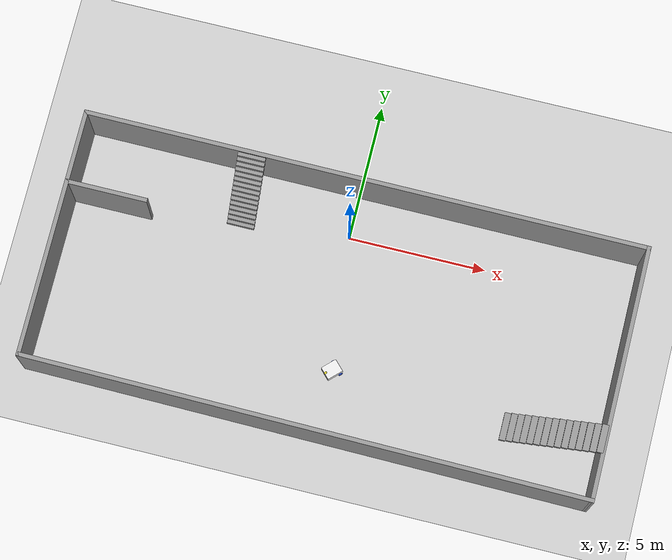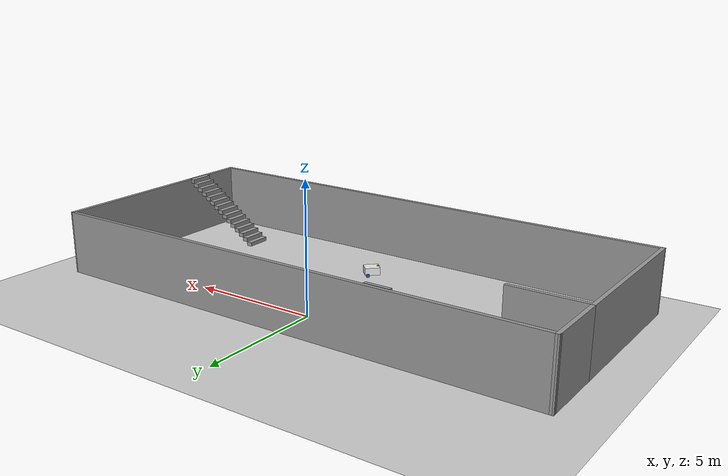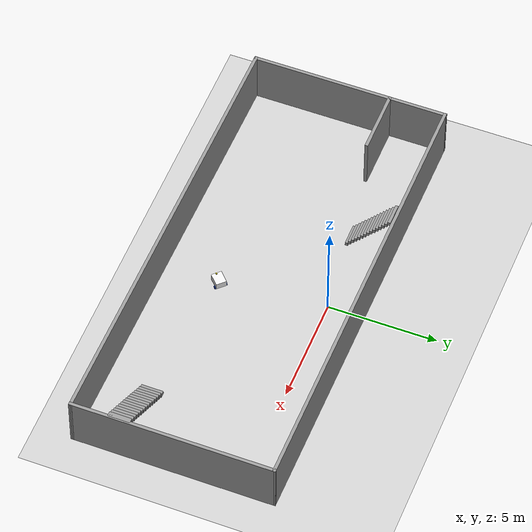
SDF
<sdf version="1.6">
 <world name="default">
  <light name="sun" type="directional">
   <pose>0 0 10 0 -0 0</pose>
   <diffuse>0.8 0.8 0.8 1</diffuse>
   <specular>0.2 0.2 0.2 1</specular>
   <attenuation>
    <range>1000</range>
    <constant>0.9</constant>
    <linear>0.01</linear>
    <quadratic>0.001</quadratic>
   </attenuation>
   <direction>-0.5 0.1 -0.9</direction>
  </light>
  <model name="ground_plane">
   <static>1</static>
   <link name="link">
    <collision name="collision">
     <geometry><plane><normal>0 0 1</normal><size>100 100</size></plane></geometry>
     <surface>
      <contact><collide_bitmask>65535</collide_bitmask></contact>
      <friction><ode><mu>100</mu><mu2>50</mu2></ode></friction>
     </surface>
    </collision>
    <visual name="visual">
     <cast_shadows>0</cast_shadows>
     <geometry><plane><normal>0 0 1</normal><size>100 100</size></plane></geometry>
     <material>
      <script><uri>file://media/materials/scripts/gazebo.material</uri><name>Gazebo/Grey</name></script>
     </material>
    </visual>
   </link>
  </model>
  <gravity>0 0 -9.8</gravity>
  <magnetic_field>6e-06 2.3e-05 -4.2e-05</magnetic_field>
  <atmosphere type="adiabatic"/>
  <physics name="default_physics" default="0" type="ode">
   <max_step_size>0.001</max_step_size>
   <real_time_factor>1</real_time_factor>
   <real_time_update_rate>1000</real_time_update_rate>
  </physics>
  <scene><ambient>0.4 0.4 0.4 1</ambient><background>0.7 0.7 0.7 1</background><shadows>1</shadows></scene>
  <spherical_coordinates>
   <surface_model>EARTH_WGS84</surface_model>
   <latitude_deg>0</latitude_deg>
   <longitude_deg>0</longitude_deg>
   <elevation>0</elevation>
   <heading_deg>0</heading_deg>
  </spherical_coordinates>
  <model name="robot">
   <link name="base_link">
    <inertial>
     <pose>0.213636 0 0.136364 0 -0 0</pose>
     <mass>5.5</mass>
     <inertia>
      <ixx>0.146833</ixx>
      <ixy>0</ixy>
      <ixz>0.0102273</ixz>
      <iyy>0.20905</iyy>
      <iyz>0</iyz>
      <izz>0.259333</izz>
     </inertia>
    </inertial>
    <collision name="base_link_fixed_joint_lump__chassis_collision">
     <pose>0.2 0 0.15 0 -0 0</pose>
     <geometry><box><size>0.6 0.485 0.3</size></box></geometry>
    </collision>
    <collision name="base_link_fixed_joint_lump__caster_wheel_collision_1">
     <pose>0.35 0 0 0 -0 0</pose>
     <geometry><sphere><radius>0.074</radius></sphere></geometry>
     <surface><friction><ode><mu>0.001</mu><mu2>0.001</mu2></ode></friction></surface>
    </collision>
    <collision name="base_link_fixed_joint_lump__laser_collision_2">
     <pose>0.455 0 0.325 0 -0 0</pose>
     <geometry>
      <mesh><scale>0.001 0.001 0.001</scale><uri>/home/nick/turtlebot_ws/src/bot_demo/stl/rplidar.stl</uri></mesh>
     </geometry>
    </collision>
    <visual name="base_link_fixed_joint_lump__chassis_visual">
     <pose>0.2 0 0.15 0 -0 0</pose>
     <geometry><box><size>0.6 0.485 0.3</size></box></geometry>
     <material>
      <script><name>Gazebo/White</name><uri>file://media/materials/scripts/gazebo.material</uri></script>
     </material>
    </visual>
    <visual name="base_link_fixed_joint_lump__caster_wheel_visual_1">
     <pose>0.35 0 0 0 -0 0</pose>
     <geometry><sphere><radius>0.074</radius></sphere></geometry>
     <material>
      <script><name>Gazebo/Black</name><uri>file://media/materials/scripts/gazebo.material</uri></script>
     </material>
    </visual>
    <visual name="base_link_fixed_joint_lump__laser_visual_2">
     <pose>0.455 0 0.325 0 0 -1.5708</pose>
     <geometry>
      <mesh><scale>0.001 0.001 0.001</scale><uri>/home/nick/turtlebot_ws/src/bot_demo/stl/rplidar.stl</uri></mesh>
     </geometry>
     <material>
      <script><name>Gazebo/Yellow</name><uri>file://media/materials/scripts/gazebo.material</uri></script>
     </material>
    </visual>
   </link>
   <link name="left_wheel">
    <pose>0 0.2675 0 -1.5708 0 0</pose>
    <inertial>
     <mass>0.5</mass>
     <inertia>
      <ixx>0.000761542</ixx>
      <ixy>0</ixy>
      <ixz>0</ixz>
      <iyy>0.000761542</iyy>
      <iyz>0</iyz>
      <izz>0.001369</izz>
     </inertia>
    </inertial>
    <collision name="left_wheel_collision">
     <geometry><cylinder><length>0.043</length><radius>0.074</radius></cylinder></geometry>
    </collision>
    <visual name="left_wheel_visual">
     <geometry><cylinder><length>0.043</length><radius>0.074</radius></cylinder></geometry>
     <material>
      <script><name>Gazebo/Blue</name><uri>file://media/materials/scripts/gazebo.material</uri></script>
     </material>
    </visual>
   </link>
   <joint name="left_wheel_joint" type="revolute">
    <child>left_wheel</child>
    <parent>base_link</parent>
    <axis>
     <xyz>0 0 1</xyz>
     <limit><lower>-1e+16</lower><upper>1e+16</upper></limit>
     <dynamics><spring_reference>0</spring_reference><spring_stiffness>0</spring_stiffness></dynamics>
     <use_parent_model_frame>0</use_parent_model_frame>
    </axis>
   </joint>
   <link name="right_wheel">
    <pose>0 -0.2675 0 1.5708 -0 0</pose>
    <inertial>
     <mass>0.5</mass>
     <inertia>
      <ixx>0.000761542</ixx>
      <ixy>0</ixy>
      <ixz>0</ixz>
      <iyy>0.000761542</iyy>
      <iyz>0</iyz>
      <izz>0.001369</izz>
     </inertia>
    </inertial>
    <collision name="right_wheel_collision">
     <geometry><cylinder><length>0.043</length><radius>0.074</radius></cylinder></geometry>
    </collision>
    <visual name="right_wheel_visual">
     <geometry><cylinder><length>0.043</length><radius>0.074</radius></cylinder></geometry>
     <material>
      <script><name>Gazebo/Blue</name><uri>file://media/materials/scripts/gazebo.material</uri></script>
     </material>
    </visual>
   </link>
   <joint name="right_wheel_joint" type="revolute">
    <child>right_wheel</child>
    <parent>base_link</parent>
    <axis>
     <xyz>0 0 -1</xyz>
     <limit><lower>-1e+16</lower><upper>1e+16</upper></limit>
     <dynamics><spring_reference>0</spring_reference><spring_stiffness>0</spring_stiffness></dynamics>
     <use_parent_model_frame>0</use_parent_model_frame>
    </axis>
   </joint>
   <static>0</static>
   <plugin name="differential_drive_controller" filename="libgazebo_ros_diff_drive.so">
    <rosDebugLevel>Debug</rosDebugLevel>
    <publishWheelTF>1</publishWheelTF>
    <robotNamespace>/</robotNamespace>
    <publishTf>1</publishTf>
    <publishWheelJointState>1</publishWheelJointState>
    <alwaysOn>1</alwaysOn>
    <updateRate>100.0</updateRate>
    <legacyMode>1</legacyMode>
    <leftJoint>left_wheel_joint</leftJoint>
    <rightJoint>right_wheel_joint</rightJoint>
    <wheelSeparation>0.535</wheelSeparation>
    <wheelDiameter>0.148</wheelDiameter>
    <broadcastTF>1</broadcastTF>
    <wheelTorque>30</wheelTorque>
    <wheelAcceleration>1.8</wheelAcceleration>
    <commandTopic>cmd_vel</commandTopic>
    <odometryFrame>odom</odometryFrame>
    <odometryTopic>odom</odometryTopic>
    <robotBaseFrame>base_footprint</robotBaseFrame>
   </plugin>
   <pose>0.697172 -4.72602 0.074 -1e-06 1e-06 -2.36633</pose>
  </model>
  <model name="takearest">
   <pose>0.177477 -2.93966 0 0 -0 0</pose>
   <link name="Stairs_0">
    <visual name="Stairs_0_Visual_0">
     <pose>6.79993 -2.41384 0.083333 0 -0 1.5708</pose>
     <geometry><box><size>1 0.233333 0.166667</size></box></geometry>
     <material>
      <script><uri>file://media/materials/scripts/gazebo.material</uri><name>Gazebo/Grey</name></script>
      <ambient>1 1 1 1</ambient>
     </material>
     <meta><layer>0</layer></meta>
    </visual>
    <collision name="Stairs_0_Collision_0">
     <geometry><box><size>1 0.233333 0.166667</size></box></geometry>
     <pose>6.79993 -2.41384 0.083333 0 -0 1.5708</pose>
    </collision>
    <visual name="Stairs_0_Visual_1">
     <pose>7.03327 -2.41384 0.25 0 -0 1.5708</pose>
     <geometry><box><size>1 0.233333 0.166667</size></box></geometry>
     <material>
      <script><uri>file://media/materials/scripts/gazebo.material</uri><name>Gazebo/Grey</name></script>
      <ambient>1 1 1 1</ambient>
     </material>
     <meta><layer>0</layer></meta>
    </visual>
    <collision name="Stairs_0_Collision_1">
     <geometry><box><size>1 0.233333 0.166667</size></box></geometry>
     <pose>7.03327 -2.41384 0.25 0 -0 1.5708</pose>
    </collision>
    <visual name="Stairs_0_Visual_2">
     <pose>7.2666 -2.41384 0.416667 0 -0 1.5708</pose>
     <geometry><box><size>1 0.233333 0.166667</size></box></geometry>
     <material>
      <script><uri>file://media/materials/scripts/gazebo.material</uri><name>Gazebo/Grey</name></script>
      <ambient>1 1 1 1</ambient>
     </material>
     <meta><layer>0</layer></meta>
    </visual>
    <collision name="Stairs_0_Collision_2">
     <geometry><box><size>1 0.233333 0.166667</size></box></geometry>
     <pose>7.2666 -2.41384 0.416667 0 -0 1.5708</pose>
    </collision>
    <visual name="Stairs_0_Visual_3">
     <pose>7.49993 -2.41384 0.583333 0 -0 1.5708</pose>
     <geometry><box><size>1 0.233333 0.166667</size></box></geometry>
     <material>
      <script><uri>file://media/materials/scripts/gazebo.material</uri><name>Gazebo/Grey</name></script>
      <ambient>1 1 1 1</ambient>
     </material>
     <meta><layer>0</layer></meta>
    </visual>
    <collision name="Stairs_0_Collision_3">
     <geometry><box><size>1 0.233333 0.166667</size></box></geometry>
     <pose>7.49993 -2.41384 0.583333 0 -0 1.5708</pose>
    </collision>
    <visual name="Stairs_0_Visual_4">
     <pose>7.73327 -2.41384 0.75 0 -0 1.5708</pose>
     <geometry><box><size>1 0.233333 0.166667</size></box></geometry>
     <material>
      <script><uri>file://media/materials/scripts/gazebo.material</uri><name>Gazebo/Grey</name></script>
      <ambient>1 1 1 1</ambient>
     </material>
     <meta><layer>0</layer></meta>
    </visual>
    <collision name="Stairs_0_Collision_4">
     <geometry><box><size>1 0.233333 0.166667</size></box></geometry>
     <pose>7.73327 -2.41384 0.75 0 -0 1.5708</pose>
    </collision>
    <visual name="Stairs_0_Visual_5">
     <pose>7.9666 -2.41384 0.916667 0 -0 1.5708</pose>
     <geometry><box><size>1 0.233333 0.166667</size></box></geometry>
     <material>
      <script><uri>file://media/materials/scripts/gazebo.material</uri><name>Gazebo/Grey</name></script>
      <ambient>1 1 1 1</ambient>
     </material>
     <meta><layer>0</layer></meta>
    </visual>
    <collision name="Stairs_0_Collision_5">
     <geometry><box><size>1 0.233333 0.166667</size></box></geometry>
     <pose>7.9666 -2.41384 0.916667 0 -0 1.5708</pose>
    </collision>
    <visual name="Stairs_0_Visual_6">
     <pose>8.19993 -2.41384 1.08333 0 -0 1.5708</pose>
     <geometry><box><size>1 0.233333 0.166667</size></box></geometry>
     <material>
      <script><uri>file://media/materials/scripts/gazebo.material</uri><name>Gazebo/Grey</name></script>
      <ambient>1 1 1 1</ambient>
     </material>
     <meta><layer>0</layer></meta>
    </visual>
    <collision name="Stairs_0_Collision_6">
     <geometry><box><size>1 0.233333 0.166667</size></box></geometry>
     <pose>8.19993 -2.41384 1.08333 0 -0 1.5708</pose>
    </collision>
    <visual name="Stairs_0_Visual_7">
     <pose>8.43327 -2.41384 1.25 0 -0 1.5708</pose>
     <geometry><box><size>1 0.233333 0.166667</size></box></geometry>
     <material>
      <script><uri>file://media/materials/scripts/gazebo.material</uri><name>Gazebo/Grey</name></script>
      <ambient>1 1 1 1</ambient>
     </material>
     <meta><layer>0</layer></meta>
    </visual>
    <collision name="Stairs_0_Collision_7">
     <geometry><box><size>1 0.233333 0.166667</size></box></geometry>
     <pose>8.43327 -2.41384 1.25 0 -0 1.5708</pose>
    </collision>
    <visual name="Stairs_0_Visual_8">
     <pose>8.6666 -2.41384 1.41667 0 -0 1.5708</pose>
     <geometry><box><size>1 0.233333 0.166667</size></box></geometry>
     <material>
      <script><uri>file://media/materials/scripts/gazebo.material</uri><name>Gazebo/Grey</name></script>
      <ambient>1 1 1 1</ambient>
     </material>
     <meta><layer>0</layer></meta>
    </visual>
    <collision name="Stairs_0_Collision_8">
     <geometry><box><size>1 0.233333 0.166667</size></box></geometry>
     <pose>8.6666 -2.41384 1.41667 0 -0 1.5708</pose>
    </collision>
    <visual name="Stairs_0_Visual_9">
     <pose>8.89993 -2.41384 1.58333 0 -0 1.5708</pose>
     <geometry><box><size>1 0.233333 0.166667</size></box></geometry>
     <material>
      <script><uri>file://media/materials/scripts/gazebo.material</uri><name>Gazebo/Grey</name></script>
      <ambient>1 1 1 1</ambient>
     </material>
     <meta><layer>0</layer></meta>
    </visual>
    <collision name="Stairs_0_Collision_9">
     <geometry><box><size>1 0.233333 0.166667</size></box></geometry>
     <pose>8.89993 -2.41384 1.58333 0 -0 1.5708</pose>
    </collision>
    <visual name="Stairs_0_Visual_10">
     <pose>9.13327 -2.41384 1.75 0 -0 1.5708</pose>
     <geometry><box><size>1 0.233333 0.166667</size></box></geometry>
     <material>
      <script><uri>file://media/materials/scripts/gazebo.material</uri><name>Gazebo/Grey</name></script>
      <ambient>1 1 1 1</ambient>
     </material>
     <meta><layer>0</layer></meta>
    </visual>
    <collision name="Stairs_0_Collision_10">
     <geometry><box><size>1 0.233333 0.166667</size></box></geometry>
     <pose>9.13327 -2.41384 1.75 0 -0 1.5708</pose>
    </collision>
    <visual name="Stairs_0_Visual_11">
     <pose>9.3666 -2.41384 1.91667 0 -0 1.5708</pose>
     <geometry><box><size>1 0.233333 0.166667</size></box></geometry>
     <material>
      <script><uri>file://media/materials/scripts/gazebo.material</uri><name>Gazebo/Grey</name></script>
      <ambient>1 1 1 1</ambient>
     </material>
     <meta><layer>0</layer></meta>
    </visual>
    <collision name="Stairs_0_Collision_11">
     <geometry><box><size>1 0.233333 0.166667</size></box></geometry>
     <pose>9.3666 -2.41384 1.91667 0 -0 1.5708</pose>
    </collision>
    <visual name="Stairs_0_Visual_12">
     <pose>9.59994 -2.41384 2.08333 0 -0 1.5708</pose>
     <geometry><box><size>1 0.233333 0.166667</size></box></geometry>
     <material>
      <script><uri>file://media/materials/scripts/gazebo.material</uri><name>Gazebo/Grey</name></script>
      <ambient>1 1 1 1</ambient>
     </material>
     <meta><layer>0</layer></meta>
    </visual>
    <collision name="Stairs_0_Collision_12">
     <geometry><box><size>1 0.233333 0.166667</size></box></geometry>
     <pose>9.59994 -2.41384 2.08333 0 -0 1.5708</pose>
    </collision>
    <visual name="Stairs_0_Visual_13">
     <pose>9.83327 -2.41384 2.25 0 -0 1.5708</pose>
     <geometry><box><size>1 0.233333 0.166667</size></box></geometry>
     <material>
      <script><uri>file://media/materials/scripts/gazebo.material</uri><name>Gazebo/Grey</name></script>
      <ambient>1 1 1 1</ambient>
     </material>
     <meta><layer>0</layer></meta>
    </visual>
    <collision name="Stairs_0_Collision_13">
     <geometry><box><size>1 0.233333 0.166667</size></box></geometry>
     <pose>9.83327 -2.41384 2.25 0 -0 1.5708</pose>
    </collision>
    <visual name="Stairs_0_Visual_14">
     <pose>10.0666 -2.41384 2.41667 0 -0 1.5708</pose>
     <geometry><box><size>1 0.233333 0.166667</size></box></geometry>
     <material>
      <script><uri>file://media/materials/scripts/gazebo.material</uri><name>Gazebo/Grey</name></script>
      <ambient>1 1 1 1</ambient>
     </material>
     <meta><layer>0</layer></meta>
    </visual>
    <collision name="Stairs_0_Collision_14">
     <geometry><box><size>1 0.233333 0.166667</size></box></geometry>
     <pose>10.0666 -2.41384 2.41667 0 -0 1.5708</pose>
    </collision>
   </link>
   <link name="Stairs_1">
    <visual name="Stairs_1_Visual_0">
     <pose>-4.09749 2.48169 0.083333 0 -0 -3.14159</pose>
     <geometry><box><size>1 0.136788 0.166667</size></box></geometry>
     <material>
      <script><uri>file://media/materials/scripts/gazebo.material</uri><name>Gazebo/Grey</name></script>
      <ambient>1 1 1 1</ambient>
     </material>
     <meta><layer>0</layer></meta>
    </visual>
    <collision name="Stairs_1_Collision_0">
     <geometry><box><size>1 0.136788 0.166667</size></box></geometry>
     <pose>-4.09749 2.48169 0.083333 0 -0 -3.14159</pose>
    </collision>
    <visual name="Stairs_1_Visual_1">
     <pose>-4.09749 2.61848 0.25 0 -0 -3.14159</pose>
     <geometry><box><size>1 0.136788 0.166667</size></box></geometry>
     <material>
      <script><uri>file://media/materials/scripts/gazebo.material</uri><name>Gazebo/Grey</name></script>
      <ambient>1 1 1 1</ambient>
     </material>
     <meta><layer>0</layer></meta>
    </visual>
    <collision name="Stairs_1_Collision_1">
     <geometry><box><size>1 0.136788 0.166667</size></box></geometry>
     <pose>-4.09749 2.61848 0.25 0 -0 -3.14159</pose>
    </collision>
    <visual name="Stairs_1_Visual_2">
     <pose>-4.09749 2.75526 0.416667 0 -0 -3.14159</pose>
     <geometry><box><size>1 0.136788 0.166667</size></box></geometry>
     <material>
      <script><uri>file://media/materials/scripts/gazebo.material</uri><name>Gazebo/Grey</name></script>
      <ambient>1 1 1 1</ambient>
     </material>
     <meta><layer>0</layer></meta>
    </visual>
    <collision name="Stairs_1_Collision_2">
     <geometry><box><size>1 0.136788 0.166667</size></box></geometry>
     <pose>-4.09749 2.75526 0.416667 0 -0 -3.14159</pose>
    </collision>
    <visual name="Stairs_1_Visual_3">
     <pose>-4.09749 2.89205 0.583333 0 -0 -3.14159</pose>
     <geometry><box><size>1 0.136788 0.166667</size></box></geometry>
     <material>
      <script><uri>file://media/materials/scripts/gazebo.material</uri><name>Gazebo/Grey</name></script>
      <ambient>1 1 1 1</ambient>
     </material>
     <meta><layer>0</layer></meta>
    </visual>
    <collision name="Stairs_1_Collision_3">
     <geometry><box><size>1 0.136788 0.166667</size></box></geometry>
     <pose>-4.09749 2.89205 0.583333 0 -0 -3.14159</pose>
    </collision>
    <visual name="Stairs_1_Visual_4">
     <pose>-4.09749 3.02884 0.75 0 -0 -3.14159</pose>
     <geometry><box><size>1 0.136788 0.166667</size></box></geometry>
     <material>
      <script><uri>file://media/materials/scripts/gazebo.material</uri><name>Gazebo/Grey</name></script>
      <ambient>1 1 1 1</ambient>
     </material>
     <meta><layer>0</layer></meta>
    </visual>
    <collision name="Stairs_1_Collision_4">
     <geometry><box><size>1 0.136788 0.166667</size></box></geometry>
     <pose>-4.09749 3.02884 0.75 0 -0 -3.14159</pose>
    </collision>
    <visual name="Stairs_1_Visual_5">
     <pose>-4.09749 3.16563 0.916667 0 -0 -3.14159</pose>
     <geometry><box><size>1 0.136788 0.166667</size></box></geometry>
     <material>
      <script><uri>file://media/materials/scripts/gazebo.material</uri><name>Gazebo/Grey</name></script>
      <ambient>1 1 1 1</ambient>
     </material>
     <meta><layer>0</layer></meta>
    </visual>
    <collision name="Stairs_1_Collision_5">
     <geometry><box><size>1 0.136788 0.166667</size></box></geometry>
     <pose>-4.09749 3.16563 0.916667 0 -0 -3.14159</pose>
    </collision>
    <visual name="Stairs_1_Visual_6">
     <pose>-4.09749 3.30242 1.08333 0 -0 -3.14159</pose>
     <geometry><box><size>1 0.136788 0.166667</size></box></geometry>
     <material>
      <script><uri>file://media/materials/scripts/gazebo.material</uri><name>Gazebo/Grey</name></script>
      <ambient>1 1 1 1</ambient>
     </material>
     <meta><layer>0</layer></meta>
    </visual>
    <collision name="Stairs_1_Collision_6">
     <geometry><box><size>1 0.136788 0.166667</size></box></geometry>
     <pose>-4.09749 3.30242 1.08333 0 -0 -3.14159</pose>
    </collision>
    <visual name="Stairs_1_Visual_7">
     <pose>-4.09749 3.4392 1.25 0 -0 -3.14159</pose>
     <geometry><box><size>1 0.136788 0.166667</size></box></geometry>
     <material>
      <script><uri>file://media/materials/scripts/gazebo.material</uri><name>Gazebo/Grey</name></script>
      <ambient>1 1 1 1</ambient>
     </material>
     <meta><layer>0</layer></meta>
    </visual>
    <collision name="Stairs_1_Collision_7">
     <geometry><box><size>1 0.136788 0.166667</size></box></geometry>
     <pose>-4.09749 3.4392 1.25 0 -0 -3.14159</pose>
    </collision>
    <visual name="Stairs_1_Visual_8">
     <pose>-4.09749 3.57599 1.41667 0 -0 -3.14159</pose>
     <geometry><box><size>1 0.136788 0.166667</size></box></geometry>
     <material>
      <script><uri>file://media/materials/scripts/gazebo.material</uri><name>Gazebo/Grey</name></script>
      <ambient>1 1 1 1</ambient>
     </material>
     <meta><layer>0</layer></meta>
    </visual>
    <collision name="Stairs_1_Collision_8">
     <geometry><box><size>1 0.136788 0.166667</size></box></geometry>
     <pose>-4.09749 3.57599 1.41667 0 -0 -3.14159</pose>
    </collision>
    <visual name="Stairs_1_Visual_9">
     <pose>-4.09749 3.71278 1.58333 0 -0 -3.14159</pose>
     <geometry><box><size>1 0.136788 0.166667</size></box></geometry>
     <material>
      <script><uri>file://media/materials/scripts/gazebo.material</uri><name>Gazebo/Grey</name></script>
      <ambient>1 1 1 1</ambient>
     </material>
     <meta><layer>0</layer></meta>
    </visual>
    <collision name="Stairs_1_Collision_9">
     <geometry><box><size>1 0.136788 0.166667</size></box></geometry>
     <pose>-4.09749 3.71278 1.58333 0 -0 -3.14159</pose>
    </collision>
    <visual name="Stairs_1_Visual_10">
     <pose>-4.09749 3.84957 1.75 0 -0 -3.14159</pose>
     <geometry><box><size>1 0.136788 0.166667</size></box></geometry>
     <material>
      <script><uri>file://media/materials/scripts/gazebo.material</uri><name>Gazebo/Grey</name></script>
      <ambient>1 1 1 1</ambient>
     </material>
     <meta><layer>0</layer></meta>
    </visual>
    <collision name="Stairs_1_Collision_10">
     <geometry><box><size>1 0.136788 0.166667</size></box></geometry>
     <pose>-4.09749 3.84957 1.75 0 -0 -3.14159</pose>
    </collision>
    <visual name="Stairs_1_Visual_11">
     <pose>-4.09749 3.98636 1.91667 0 -0 -3.14159</pose>
     <geometry><box><size>1 0.136788 0.166667</size></box></geometry>
     <material>
      <script><uri>file://media/materials/scripts/gazebo.material</uri><name>Gazebo/Grey</name></script>
      <ambient>1 1 1 1</ambient>
     </material>
     <meta><layer>0</layer></meta>
    </visual>
    <collision name="Stairs_1_Collision_11">
     <geometry><box><size>1 0.136788 0.166667</size></box></geometry>
     <pose>-4.09749 3.98636 1.91667 0 -0 -3.14159</pose>
    </collision>
    <visual name="Stairs_1_Visual_12">
     <pose>-4.09749 4.12315 2.08333 0 -0 -3.14159</pose>
     <geometry><box><size>1 0.136788 0.166667</size></box></geometry>
     <material>
      <script><uri>file://media/materials/scripts/gazebo.material</uri><name>Gazebo/Grey</name></script>
      <ambient>1 1 1 1</ambient>
     </material>
     <meta><layer>0</layer></meta>
    </visual>
    <collision name="Stairs_1_Collision_12">
     <geometry><box><size>1 0.136788 0.166667</size></box></geometry>
     <pose>-4.09749 4.12315 2.08333 0 -0 -3.14159</pose>
    </collision>
    <visual name="Stairs_1_Visual_13">
     <pose>-4.09749 4.25993 2.25 0 -0 -3.14159</pose>
     <geometry><box><size>1 0.136788 0.166667</size></box></geometry>
     <material>
      <script><uri>file://media/materials/scripts/gazebo.material</uri><name>Gazebo/Grey</name></script>
      <ambient>1 1 1 1</ambient>
     </material>
     <meta><layer>0</layer></meta>
    </visual>
    <collision name="Stairs_1_Collision_13">
     <geometry><box><size>1 0.136788 0.166667</size></box></geometry>
     <pose>-4.09749 4.25993 2.25 0 -0 -3.14159</pose>
    </collision>
    <visual name="Stairs_1_Visual_14">
     <pose>-4.09749 4.39672 2.41667 0 -0 -3.14159</pose>
     <geometry><box><size>1 0.136788 0.166667</size></box></geometry>
     <material>
      <script><uri>file://media/materials/scripts/gazebo.material</uri><name>Gazebo/Grey</name></script>
      <ambient>1 1 1 1</ambient>
     </material>
     <meta><layer>0</layer></meta>
    </visual>
    <collision name="Stairs_1_Collision_14">
     <geometry><box><size>1 0.136788 0.166667</size></box></geometry>
     <pose>-4.09749 4.39672 2.41667 0 -0 -3.14159</pose>
    </collision>
   </link>
   <link name="Wall_0">
    <collision name="Wall_0_Collision">
     <geometry><box><size>20.511 0.15 2.5</size></box></geometry>
     <pose>0 0 1.25 0 -0 0</pose>
    </collision>
    <visual name="Wall_0_Visual">
     <pose>0 0 1.25 0 -0 0</pose>
     <geometry><box><size>20.511 0.15 2.5</size></box></geometry>
     <material>
      <script><uri>file://media/materials/scripts/gazebo.material</uri><name>Gazebo/Grey</name></script>
      <ambient>1 1 1 1</ambient>
     </material>
     <meta><layer>0</layer></meta>
    </visual>
    <pose>-0 -4.47974 0 0 -0 -0.009823</pose>
   </link>
   <link name="Wall_18">
    <collision name="Wall_18_Collision">
     <geometry><box><size>9.25 0.15 2.5</size></box></geometry>
     <pose>0 0 1.25 0 -0 0</pose>
    </collision>
    <visual name="Wall_18_Visual">
     <pose>0 0 1.25 0 -0 0</pose>
     <geometry><box><size>9.25 0.15 2.5</size></box></geometry>
     <material>
      <script><uri>file://media/materials/scripts/gazebo.material</uri><name>Gazebo/Grey</name></script>
      <ambient>1 1 1 1</ambient>
     </material>
     <meta><layer>0</layer></meta>
    </visual>
    <pose>10.18 -0.029744 0 0 -0 1.5708</pose>
   </link>
   <link name="Wall_19">
    <collision name="Wall_19_Collision">
     <geometry><box><size>20.5101 0.15 2.5</size></box></geometry>
     <pose>0 0 1.25 0 -0 0</pose>
    </collision>
    <visual name="Wall_19_Visual">
     <pose>0 0 1.25 0 -0 0</pose>
     <geometry><box><size>20.5101 0.15 2.5</size></box></geometry>
     <material>
      <script><uri>file://media/materials/scripts/gazebo.material</uri><name>Gazebo/Grey</name></script>
      <ambient>1 1 1 1</ambient>
     </material>
     <meta><layer>0</layer></meta>
    </visual>
    <pose>-0 4.55026 0 0 -0 3.13865</pose>
   </link>
   <link name="Wall_3">
    <collision name="Wall_3_Collision">
     <geometry><box><size>6.5 0.15 2.5</size></box></geometry>
     <pose>0 0 1.25 0 -0 0</pose>
    </collision>
    <visual name="Wall_3_Visual">
     <pose>0 0 1.25 0 -0 0</pose>
     <geometry><box><size>6.5 0.15 2.5</size></box></geometry>
     <material>
      <script><uri>file://media/materials/scripts/gazebo.material</uri><name>Gazebo/Grey</name></script>
      <ambient>1 1 1 1</ambient>
     </material>
     <meta><layer>0</layer></meta>
    </visual>
    <pose>-10.18 -1.19474 0 0 -0 1.5708</pose>
   </link>
   <link name="Wall_5">
    <collision name="Wall_5_Collision">
     <geometry><box><size>3 0.15 2.5</size></box></geometry>
     <pose>0 0 1.25 0 -0 0</pose>
    </collision>
    <visual name="Wall_5_Visual">
     <pose>0 0 1.25 0 -0 0</pose>
     <geometry><box><size>3 0.15 2.5</size></box></geometry>
     <material>
      <script><uri>file://media/materials/scripts/gazebo.material</uri><name>Gazebo/Grey</name></script>
      <ambient>1 1 1 1</ambient>
     </material>
     <meta><layer>0</layer></meta>
    </visual>
    <pose>-8.755 1.98026 0 0 -0 0</pose>
   </link>
   <link name="Wall_8">
    <collision name="Wall_8_Collision">
     <geometry><box><size>2.75 0.15 2.5</size></box></geometry>
     <pose>0 0 1.25 0 -0 0</pose>
    </collision>
    <visual name="Wall_8_Visual">
     <pose>0 0 1.25 0 -0 0</pose>
     <geometry><box><size>2.75 0.15 2.5</size></box></geometry>
     <material>
      <script><uri>file://media/materials/scripts/gazebo.material</uri><name>Gazebo/Grey</name></script>
      <ambient>1 1 1 1</ambient>
     </material>
     <meta><layer>0</layer></meta>
    </visual>
    <pose>-10.18 3.28026 0 0 -0 1.5708</pose>
   </link>
   <static>1</static>
  </model>
 </world>
</sdf>
